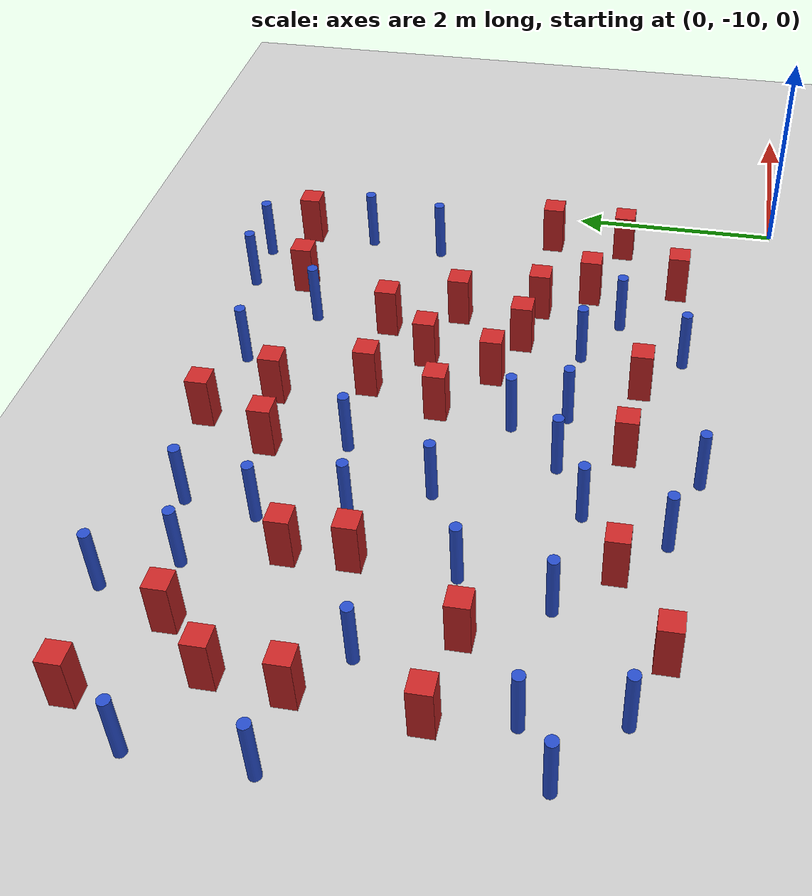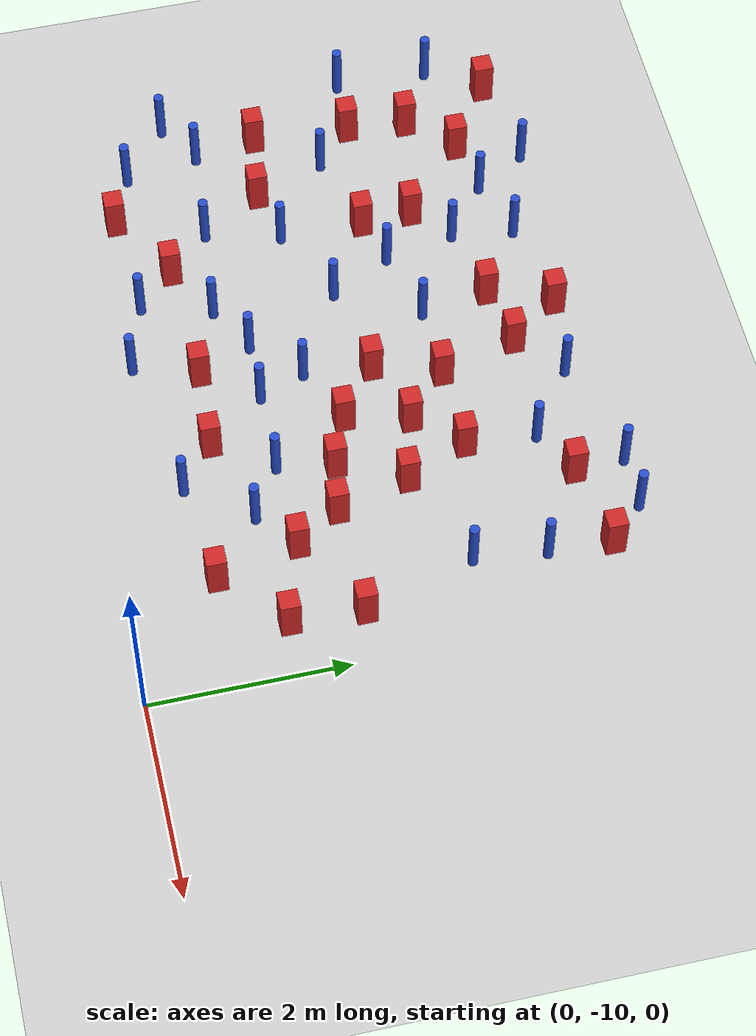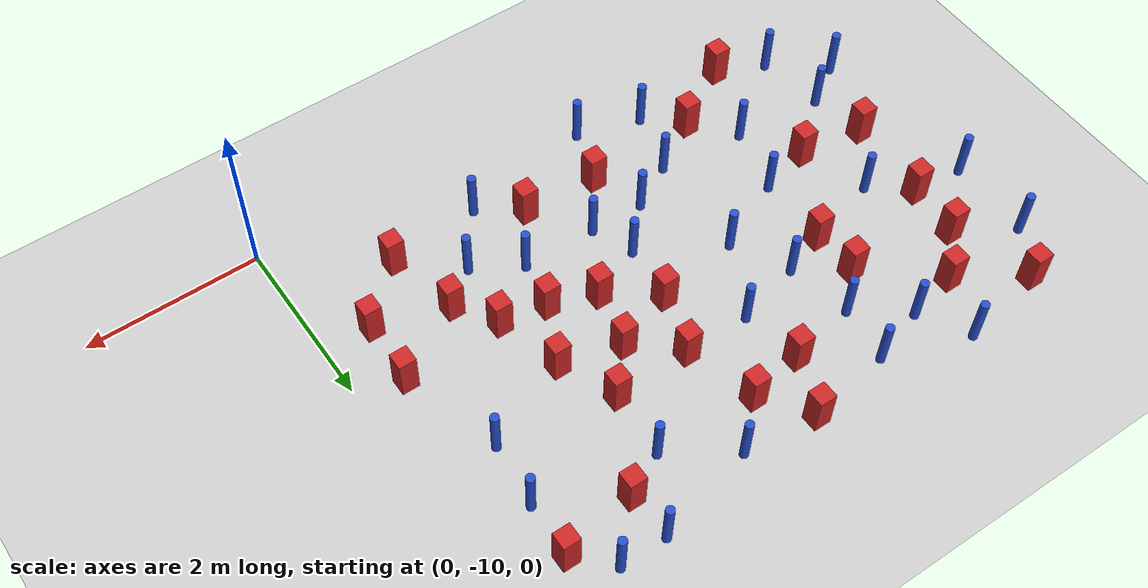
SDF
<sdf version="1.6">
 <world name="default">
  <model name="ground_plane">
   <static>1</static>
   <link name="link">
    <collision name="collision">
     <geometry><plane><normal>0 0 1</normal><size>100 100</size></plane></geometry>
     <surface><friction><ode><mu>100</mu><mu2>50</mu2></ode></friction></surface>
    </collision>
    <visual name="visual">
     <cast_shadows>0</cast_shadows>
     <geometry><plane><normal>0 0 1</normal><size>100 100</size></plane></geometry>
     <material>
      <ambient>1.0 1.0 1.0 1.0</ambient>
      <diffuse>0.8 0.8 0.8 1.0</diffuse>
      <specular>0.01 0.01 0.01 1.000000</specular>
     </material>
    </visual>
   </link>
  </model>
  <model name="pole_obstacle0">
   <static>true</static>
   <pose>-0.847177458595 -6.63386567465 7.38925637345e-09 -8.471706928e-08 1.24976765086e-08 -1.74513093015e-07</pose>
   <link name="link">
    <pose>0 0 0.3 0 -0 0</pose>
    <inertial>
     <mass>1</mass>
     <inertia><ixx>0.145833</ixx><ixy>0</ixy><ixz>0</ixz><iyy>0.145833</iyy><iyz>0</iyz><izz>0.125</izz></inertia>
    </inertial>
    <collision name="collision">
     <geometry><cylinder><radius>0.05</radius><length>.6</length></cylinder></geometry>
    </collision>
    <visual name="visual">
     <geometry><cylinder><radius>0.05</radius><length>.6</length></cylinder></geometry>
     <material>
      <script><name>Gazebo/Blue</name><uri>file://media/materials/scripts/gazebo.material</uri></script>
     </material>
    </visual>
   </link>
  </model>
  <model name="square_post_obstacle3">
   <static>true</static>
   <pose>-5.67274698728 -7.77645275839 1.91545236811e-07 -7.35059704564e-06 1.12565212e-07 2.39332434364e-05</pose>
   <link name="link">
    <pose>0 0 0.25 0 -0 0</pose>
    <inertial>
     <mass>100</mass>
     <inertia>
      <ixx>0.166667</ixx>
      <ixy>0</ixy>
      <ixz>0</ixz>
      <iyy>0.166667</iyy>
      <iyz>0</iyz>
      <izz>0.166667</izz>
     </inertia>
    </inertial>
    <collision name="collision"><geometry><box><size>.2 .2 .5</size></box></geometry></collision>
    <visual name="visual">
     <geometry><box><size>.2 .2 .5</size></box></geometry>
     <material>
      <script><name>Gazebo/Red</name><uri>file://media/materials/scripts/gazebo.material</uri></script>
     </material>
    </visual>
   </link>
  </model>
  <model name="pole_obstacle3">
   <static>true</static>
   <pose>-4.64776272858 -5.25845965169 7.38925637345e-09 -8.47170692796e-08 1.24976764786e-08 -1.74513093032e-07</pose>
   <link name="link">
    <pose>0 0 0.3 0 -0 0</pose>
    <inertial>
     <mass>1</mass>
     <inertia><ixx>0.145833</ixx><ixy>0</ixy><ixz>0</ixz><iyy>0.145833</iyy><iyz>0</iyz><izz>0.125</izz></inertia>
    </inertial>
    <collision name="collision">
     <geometry><cylinder><radius>0.05</radius><length>.6</length></cylinder></geometry>
    </collision>
    <visual name="visual">
     <geometry><cylinder><radius>0.05</radius><length>.6</length></cylinder></geometry>
     <material>
      <script><name>Gazebo/Blue</name><uri>file://media/materials/scripts/gazebo.material</uri></script>
     </material>
    </visual>
   </link>
  </model>
  <model name="pole_obstacle5">
   <static>true</static>
   <pose>-4.25915340663 -7.26194745573 7.38925637345e-09 -8.47170692796e-08 1.24976764786e-08 -1.74513093032e-07</pose>
   <link name="link">
    <pose>0 0 0.3 0 -0 0</pose>
    <inertial>
     <mass>1</mass>
     <inertia><ixx>0.145833</ixx><ixy>0</ixy><ixz>0</ixz><iyy>0.145833</iyy><iyz>0</iyz><izz>0.125</izz></inertia>
    </inertial>
    <collision name="collision">
     <geometry><cylinder><radius>0.05</radius><length>.6</length></cylinder></geometry>
    </collision>
    <visual name="visual">
     <geometry><cylinder><radius>0.05</radius><length>.6</length></cylinder></geometry>
     <material>
      <script><name>Gazebo/Blue</name><uri>file://media/materials/scripts/gazebo.material</uri></script>
     </material>
    </visual>
   </link>
  </model>
  <model name="square_post_obstacle8">
   <static>true</static>
   <pose>-5.86757780584 -5.58678446835 1.91545236811e-07 -7.35059704564e-06 1.12565212e-07 2.39332434364e-05</pose>
   <link name="link">
    <pose>0 0 0.25 0 -0 0</pose>
    <inertial>
     <mass>100</mass>
     <inertia>
      <ixx>0.166667</ixx>
      <ixy>0</ixy>
      <ixz>0</ixz>
      <iyy>0.166667</iyy>
      <iyz>0</iyz>
      <izz>0.166667</izz>
     </inertia>
    </inertial>
    <collision name="collision"><geometry><box><size>.2 .2 .5</size></box></geometry></collision>
    <visual name="visual">
     <geometry><box><size>.2 .2 .5</size></box></geometry>
     <material>
      <script><name>Gazebo/Red</name><uri>file://media/materials/scripts/gazebo.material</uri></script>
     </material>
    </visual>
   </link>
  </model>
  <model name="square_post_obstacle15">
   <static>true</static>
   <pose>-3.65186319388 -5.09281954235 1.91545236811e-07 -7.35059704564e-06 1.12565212e-07 2.39332434364e-05</pose>
   <link name="link">
    <pose>0 0 0.25 0 -0 0</pose>
    <inertial>
     <mass>100</mass>
     <inertia>
      <ixx>0.166667</ixx>
      <ixy>0</ixy>
      <ixz>0</ixz>
      <iyy>0.166667</iyy>
      <iyz>0</iyz>
      <izz>0.166667</izz>
     </inertia>
    </inertial>
    <collision name="collision"><geometry><box><size>.2 .2 .5</size></box></geometry></collision>
    <visual name="visual">
     <geometry><box><size>.2 .2 .5</size></box></geometry>
     <material>
      <script><name>Gazebo/Red</name><uri>file://media/materials/scripts/gazebo.material</uri></script>
     </material>
    </visual>
   </link>
  </model>
  <model name="square_post_obstacle20">
   <static>true</static>
   <pose>-3.03349951172 -6.41623944425 1.91545236811e-07 -7.35059704564e-06 1.12565212e-07 2.39332434364e-05</pose>
   <link name="link">
    <pose>0 0 0.25 0 -0 0</pose>
    <inertial>
     <mass>100</mass>
     <inertia>
      <ixx>0.166667</ixx>
      <ixy>0</ixy>
      <ixz>0</ixz>
      <iyy>0.166667</iyy>
      <iyz>0</iyz>
      <izz>0.166667</izz>
     </inertia>
    </inertial>
    <collision name="collision"><geometry><box><size>.2 .2 .5</size></box></geometry></collision>
    <visual name="visual">
     <geometry><box><size>.2 .2 .5</size></box></geometry>
     <material>
      <script><name>Gazebo/Red</name><uri>file://media/materials/scripts/gazebo.material</uri></script>
     </material>
    </visual>
   </link>
  </model>
  <model name="square_post_obstacle21">
   <static>true</static>
   <pose>-0.538980642781 -8.501063538 1.91545236811e-07 -7.35059704564e-06 1.12565212e-07 2.39332434364e-05</pose>
   <link name="link">
    <pose>0 0 0.25 0 -0 0</pose>
    <inertial>
     <mass>100</mass>
     <inertia>
      <ixx>0.166667</ixx>
      <ixy>0</ixy>
      <ixz>0</ixz>
      <iyy>0.166667</iyy>
      <iyz>0</iyz>
      <izz>0.166667</izz>
     </inertia>
    </inertial>
    <collision name="collision"><geometry><box><size>.2 .2 .5</size></box></geometry></collision>
    <visual name="visual">
     <geometry><box><size>.2 .2 .5</size></box></geometry>
     <material>
      <script><name>Gazebo/Red</name><uri>file://media/materials/scripts/gazebo.material</uri></script>
     </material>
    </visual>
   </link>
  </model>
  <model name="square_post_obstacle28">
   <static>true</static>
   <pose>-0.736365129288 -5.26220822296 1.91545236811e-07 -7.35059704564e-06 1.12565212e-07 2.39332434364e-05</pose>
   <link name="link">
    <pose>0 0 0.25 0 -0 0</pose>
    <inertial>
     <mass>100</mass>
     <inertia>
      <ixx>0.166667</ixx>
      <ixy>0</ixy>
      <ixz>0</ixz>
      <iyy>0.166667</iyy>
      <iyz>0</iyz>
      <izz>0.166667</izz>
     </inertia>
    </inertial>
    <collision name="collision"><geometry><box><size>.2 .2 .5</size></box></geometry></collision>
    <visual name="visual">
     <geometry><box><size>.2 .2 .5</size></box></geometry>
     <material>
      <script><name>Gazebo/Red</name><uri>file://media/materials/scripts/gazebo.material</uri></script>
     </material>
    </visual>
   </link>
  </model>
  <model name="square_post_obstacle30">
   <static>true</static>
   <pose>-3.26258293023 -5.61690610967 1.91545236811e-07 -7.35059704564e-06 1.12565212e-07 2.39332434364e-05</pose>
   <link name="link">
    <pose>0 0 0.25 0 -0 0</pose>
    <inertial>
     <mass>100</mass>
     <inertia>
      <ixx>0.166667</ixx>
      <ixy>0</ixy>
      <ixz>0</ixz>
      <iyy>0.166667</iyy>
      <iyz>0</iyz>
      <izz>0.166667</izz>
     </inertia>
    </inertial>
    <collision name="collision"><geometry><box><size>.2 .2 .5</size></box></geometry></collision>
    <visual name="visual">
     <geometry><box><size>.2 .2 .5</size></box></geometry>
     <material>
      <script><name>Gazebo/Red</name><uri>file://media/materials/scripts/gazebo.material</uri></script>
     </material>
    </visual>
   </link>
  </model>
  <model name="pole_obstacle25">
   <static>true</static>
   <pose>-6.9955676343 -6.62596626591 7.38925637345e-09 -8.47170692796e-08 1.24976764786e-08 -1.74513093032e-07</pose>
   <link name="link">
    <pose>0 0 0.3 0 -0 0</pose>
    <inertial>
     <mass>1</mass>
     <inertia><ixx>0.145833</ixx><ixy>0</ixy><ixz>0</ixz><iyy>0.145833</iyy><iyz>0</iyz><izz>0.125</izz></inertia>
    </inertial>
    <collision name="collision">
     <geometry><cylinder><radius>0.05</radius><length>.6</length></cylinder></geometry>
    </collision>
    <visual name="visual">
     <geometry><cylinder><radius>0.05</radius><length>.6</length></cylinder></geometry>
     <material>
      <script><name>Gazebo/Blue</name><uri>file://media/materials/scripts/gazebo.material</uri></script>
     </material>
    </visual>
   </link>
  </model>
  <model name="pole_obstacle36">
   <static>true</static>
   <pose>-2.8112158535 -5.18992927133 7.38925637345e-09 -8.47170692798e-08 1.24976765033e-08 -1.74513093019e-07</pose>
   <link name="link">
    <pose>0 0 0.3 0 -0 0</pose>
    <inertial>
     <mass>1</mass>
     <inertia><ixx>0.145833</ixx><ixy>0</ixy><ixz>0</ixz><iyy>0.145833</iyy><iyz>0</iyz><izz>0.125</izz></inertia>
    </inertial>
    <collision name="collision">
     <geometry><cylinder><radius>0.05</radius><length>.6</length></cylinder></geometry>
    </collision>
    <visual name="visual">
     <geometry><cylinder><radius>0.05</radius><length>.6</length></cylinder></geometry>
     <material>
      <script><name>Gazebo/Blue</name><uri>file://media/materials/scripts/gazebo.material</uri></script>
     </material>
    </visual>
   </link>
  </model>
  <model name="pole_obstacle40">
   <static>true</static>
   <pose>-4.58627101177 -6.62813667197 7.38925637345e-09 -8.47170692796e-08 1.24976764786e-08 -1.74513093032e-07</pose>
   <link name="link">
    <pose>0 0 0.3 0 -0 0</pose>
    <inertial>
     <mass>1</mass>
     <inertia><ixx>0.145833</ixx><ixy>0</ixy><ixz>0</ixz><iyy>0.145833</iyy><iyz>0</iyz><izz>0.125</izz></inertia>
    </inertial>
    <collision name="collision">
     <geometry><cylinder><radius>0.05</radius><length>.6</length></cylinder></geometry>
    </collision>
    <visual name="visual">
     <geometry><cylinder><radius>0.05</radius><length>.6</length></cylinder></geometry>
     <material>
      <script><name>Gazebo/Blue</name><uri>file://media/materials/scripts/gazebo.material</uri></script>
     </material>
    </visual>
   </link>
  </model>
  <model name="pole_obstacle41">
   <static>true</static>
   <pose>-4.51130680225 -9.22938415425 7.38925637345e-09 -8.471706928e-08 1.24976765081e-08 -1.74513093015e-07</pose>
   <link name="link">
    <pose>0 0 0.3 0 -0 0</pose>
    <inertial>
     <mass>1</mass>
     <inertia><ixx>0.145833</ixx><ixy>0</ixy><ixz>0</ixz><iyy>0.145833</iyy><iyz>0</iyz><izz>0.125</izz></inertia>
    </inertial>
    <collision name="collision">
     <geometry><cylinder><radius>0.05</radius><length>.6</length></cylinder></geometry>
    </collision>
    <visual name="visual">
     <geometry><cylinder><radius>0.05</radius><length>.6</length></cylinder></geometry>
     <material>
      <script><name>Gazebo/Blue</name><uri>file://media/materials/scripts/gazebo.material</uri></script>
     </material>
    </visual>
   </link>
  </model>
  <model name="square_post_obstacle41">
   <static>true</static>
   <pose>-1.86152418229 -7.03844438511 1.91545236811e-07 -7.35059704564e-06 1.12565212e-07 2.39332434364e-05</pose>
   <link name="link">
    <pose>0 0 0.25 0 -0 0</pose>
    <inertial>
     <mass>100</mass>
     <inertia>
      <ixx>0.166667</ixx>
      <ixy>0</ixy>
      <ixz>0</ixz>
      <iyy>0.166667</iyy>
      <iyz>0</iyz>
      <izz>0.166667</izz>
     </inertia>
    </inertial>
    <collision name="collision"><geometry><box><size>.2 .2 .5</size></box></geometry></collision>
    <visual name="visual">
     <geometry><box><size>.2 .2 .5</size></box></geometry>
     <material>
      <script><name>Gazebo/Red</name><uri>file://media/materials/scripts/gazebo.material</uri></script>
     </material>
    </visual>
   </link>
  </model>
  <model name="square_post_obstacle51">
   <static>true</static>
   <pose>-2.14371637657 -6.39831612667 1.91545236811e-07 -7.35059704564e-06 1.12565212e-07 2.39332434364e-05</pose>
   <link name="link">
    <pose>0 0 0.25 0 -0 0</pose>
    <inertial>
     <mass>100</mass>
     <inertia>
      <ixx>0.166667</ixx>
      <ixy>0</ixy>
      <ixz>0</ixz>
      <iyy>0.166667</iyy>
      <iyz>0</iyz>
      <izz>0.166667</izz>
     </inertia>
    </inertial>
    <collision name="collision"><geometry><box><size>.2 .2 .5</size></box></geometry></collision>
    <visual name="visual">
     <geometry><box><size>.2 .2 .5</size></box></geometry>
     <material>
      <script><name>Gazebo/Red</name><uri>file://media/materials/scripts/gazebo.material</uri></script>
     </material>
    </visual>
   </link>
  </model>
  <model name="pole_obstacle56">
   <static>true</static>
   <pose>-5.62162409695 -4.92786356861 7.38925637345e-09 -8.47170692796e-08 1.24976764786e-08 -1.74513093032e-07</pose>
   <link name="link">
    <pose>0 0 0.3 0 -0 0</pose>
    <inertial>
     <mass>1</mass>
     <inertia><ixx>0.145833</ixx><ixy>0</ixy><ixz>0</ixz><iyy>0.145833</iyy><iyz>0</iyz><izz>0.125</izz></inertia>
    </inertial>
    <collision name="collision">
     <geometry><cylinder><radius>0.05</radius><length>.6</length></cylinder></geometry>
    </collision>
    <visual name="visual">
     <geometry><cylinder><radius>0.05</radius><length>.6</length></cylinder></geometry>
     <material>
      <script><name>Gazebo/Blue</name><uri>file://media/materials/scripts/gazebo.material</uri></script>
     </material>
    </visual>
   </link>
  </model>
  <model name="square_post_obstacle68">
   <static>true</static>
   <pose>-0.502850593345 -7.76920755605 1.91545236811e-07 -7.35059704564e-06 1.12565212e-07 2.39332434364e-05</pose>
   <link name="link">
    <pose>0 0 0.25 0 -0 0</pose>
    <inertial>
     <mass>100</mass>
     <inertia>
      <ixx>0.166667</ixx>
      <ixy>0</ixy>
      <ixz>0</ixz>
      <iyy>0.166667</iyy>
      <iyz>0</iyz>
      <izz>0.166667</izz>
     </inertia>
    </inertial>
    <collision name="collision"><geometry><box><size>.2 .2 .5</size></box></geometry></collision>
    <visual name="visual">
     <geometry><box><size>.2 .2 .5</size></box></geometry>
     <material>
      <script><name>Gazebo/Red</name><uri>file://media/materials/scripts/gazebo.material</uri></script>
     </material>
    </visual>
   </link>
  </model>
  <model name="pole_obstacle67">
   <static>true</static>
   <pose>-5.30021804134 -8.40699624284 7.38925637345e-09 -8.471706928e-08 1.24976765081e-08 -1.74513093015e-07</pose>
   <link name="link">
    <pose>0 0 0.3 0 -0 0</pose>
    <inertial>
     <mass>1</mass>
     <inertia><ixx>0.145833</ixx><ixy>0</ixy><ixz>0</ixz><iyy>0.145833</iyy><iyz>0</iyz><izz>0.125</izz></inertia>
    </inertial>
    <collision name="collision">
     <geometry><cylinder><radius>0.05</radius><length>.6</length></cylinder></geometry>
    </collision>
    <visual name="visual">
     <geometry><cylinder><radius>0.05</radius><length>.6</length></cylinder></geometry>
     <material>
      <script><name>Gazebo/Blue</name><uri>file://media/materials/scripts/gazebo.material</uri></script>
     </material>
    </visual>
   </link>
  </model>
  <model name="square_post_obstacle74">
   <static>true</static>
   <pose>-1.15944130475 -9.08603971386 1.91545236811e-07 -7.35059704564e-06 1.12565212e-07 2.39332434364e-05</pose>
   <link name="link">
    <pose>0 0 0.25 0 -0 0</pose>
    <inertial>
     <mass>100</mass>
     <inertia>
      <ixx>0.166667</ixx>
      <ixy>0</ixy>
      <ixz>0</ixz>
      <iyy>0.166667</iyy>
      <iyz>0</iyz>
      <izz>0.166667</izz>
     </inertia>
    </inertial>
    <collision name="collision"><geometry><box><size>.2 .2 .5</size></box></geometry></collision>
    <visual name="visual">
     <geometry><box><size>.2 .2 .5</size></box></geometry>
     <material>
      <script><name>Gazebo/Red</name><uri>file://media/materials/scripts/gazebo.material</uri></script>
     </material>
    </visual>
   </link>
  </model>
  <model name="pole_obstacle69">
   <static>true</static>
   <pose>-2.24147362272 -9.20842374757 7.38925637345e-09 -8.47170692793e-08 1.24976764408e-08 -1.74513093041e-07</pose>
   <link name="link">
    <pose>0 0 0.3 0 -0 0</pose>
    <inertial>
     <mass>1</mass>
     <inertia><ixx>0.145833</ixx><ixy>0</ixy><ixz>0</ixz><iyy>0.145833</iyy><iyz>0</iyz><izz>0.125</izz></inertia>
    </inertial>
    <collision name="collision">
     <geometry><cylinder><radius>0.05</radius><length>.6</length></cylinder></geometry>
    </collision>
    <visual name="visual">
     <geometry><cylinder><radius>0.05</radius><length>.6</length></cylinder></geometry>
     <material>
      <script><name>Gazebo/Blue</name><uri>file://media/materials/scripts/gazebo.material</uri></script>
     </material>
    </visual>
   </link>
  </model>
  <model name="square_post_obstacle76">
   <static>true</static>
   <pose>-2.69106464355 -8.85214896783 1.91545236811e-07 -7.35059704564e-06 1.12565212e-07 2.39332434364e-05</pose>
   <link name="link">
    <pose>0 0 0.25 0 -0 0</pose>
    <inertial>
     <mass>100</mass>
     <inertia>
      <ixx>0.166667</ixx>
      <ixy>0</ixy>
      <ixz>0</ixz>
      <iyy>0.166667</iyy>
      <iyz>0</iyz>
      <izz>0.166667</izz>
     </inertia>
    </inertial>
    <collision name="collision"><geometry><box><size>.2 .2 .5</size></box></geometry></collision>
    <visual name="visual">
     <geometry><box><size>.2 .2 .5</size></box></geometry>
     <material>
      <script><name>Gazebo/Red</name><uri>file://media/materials/scripts/gazebo.material</uri></script>
     </material>
    </visual>
   </link>
  </model>
  <model name="pole_obstacle73">
   <static>true</static>
   <pose>-5.96661779144 -7.03344693735 7.38925637345e-09 -8.47170692796e-08 1.24976764786e-08 -1.74513093032e-07</pose>
   <link name="link">
    <pose>0 0 0.3 0 -0 0</pose>
    <inertial>
     <mass>1</mass>
     <inertia><ixx>0.145833</ixx><ixy>0</ixy><ixz>0</ixz><iyy>0.145833</iyy><iyz>0</iyz><izz>0.125</izz></inertia>
    </inertial>
    <collision name="collision">
     <geometry><cylinder><radius>0.05</radius><length>.6</length></cylinder></geometry>
    </collision>
    <visual name="visual">
     <geometry><cylinder><radius>0.05</radius><length>.6</length></cylinder></geometry>
     <material>
      <script><name>Gazebo/Blue</name><uri>file://media/materials/scripts/gazebo.material</uri></script>
     </material>
    </visual>
   </link>
  </model>
  <model name="pole_obstacle75">
   <static>true</static>
   <pose>-1.6432676266 -4.89795423336 7.38925637345e-09 -8.47170692799e-08 1.24976765033e-08 -1.74513093018e-07</pose>
   <link name="link">
    <pose>0 0 0.3 0 -0 0</pose>
    <inertial>
     <mass>1</mass>
     <inertia><ixx>0.145833</ixx><ixy>0</ixy><ixz>0</ixz><iyy>0.145833</iyy><iyz>0</iyz><izz>0.125</izz></inertia>
    </inertial>
    <collision name="collision">
     <geometry><cylinder><radius>0.05</radius><length>.6</length></cylinder></geometry>
    </collision>
    <visual name="visual">
     <geometry><cylinder><radius>0.05</radius><length>.6</length></cylinder></geometry>
     <material>
      <script><name>Gazebo/Blue</name><uri>file://media/materials/scripts/gazebo.material</uri></script>
     </material>
    </visual>
   </link>
  </model>
  <model name="pole_obstacle81">
   <static>true</static>
   <pose>-6.20832779429 -9.07261118678 7.38925637345e-09 -8.471706928e-08 1.24976765081e-08 -1.74513093015e-07</pose>
   <link name="link">
    <pose>0 0 0.3 0 -0 0</pose>
    <inertial>
     <mass>1</mass>
     <inertia><ixx>0.145833</ixx><ixy>0</ixy><ixz>0</ixz><iyy>0.145833</iyy><iyz>0</iyz><izz>0.125</izz></inertia>
    </inertial>
    <collision name="collision">
     <geometry><cylinder><radius>0.05</radius><length>.6</length></cylinder></geometry>
    </collision>
    <visual name="visual">
     <geometry><cylinder><radius>0.05</radius><length>.6</length></cylinder></geometry>
     <material>
      <script><name>Gazebo/Blue</name><uri>file://media/materials/scripts/gazebo.material</uri></script>
     </material>
    </visual>
   </link>
  </model>
  <model name="pole_obstacle92">
   <static>true</static>
   <pose>-1.7720501906 -8.58290614097 7.38925637345e-09 -8.47170692798e-08 1.24976764881e-08 -1.74513093027e-07</pose>
   <link name="link">
    <pose>0 0 0.3 0 -0 0</pose>
    <inertial>
     <mass>1</mass>
     <inertia><ixx>0.145833</ixx><ixy>0</ixy><ixz>0</ixz><iyy>0.145833</iyy><iyz>0</iyz><izz>0.125</izz></inertia>
    </inertial>
    <collision name="collision">
     <geometry><cylinder><radius>0.05</radius><length>.6</length></cylinder></geometry>
    </collision>
    <visual name="visual">
     <geometry><cylinder><radius>0.05</radius><length>.6</length></cylinder></geometry>
     <material>
      <script><name>Gazebo/Blue</name><uri>file://media/materials/scripts/gazebo.material</uri></script>
     </material>
    </visual>
   </link>
  </model>
  <model name="pole_obstacle95">
   <static>true</static>
   <pose>-3.82068310301 -6.42851771252 7.38925637345e-09 -8.47170692794e-08 1.24976764468e-08 -1.7451309304e-07</pose>
   <link name="link">
    <pose>0 0 0.3 0 -0 0</pose>
    <inertial>
     <mass>1</mass>
     <inertia><ixx>0.145833</ixx><ixy>0</ixy><ixz>0</ixz><iyy>0.145833</iyy><iyz>0</iyz><izz>0.125</izz></inertia>
    </inertial>
    <collision name="collision">
     <geometry><cylinder><radius>0.05</radius><length>.6</length></cylinder></geometry>
    </collision>
    <visual name="visual">
     <geometry><cylinder><radius>0.05</radius><length>.6</length></cylinder></geometry>
     <material>
      <script><name>Gazebo/Blue</name><uri>file://media/materials/scripts/gazebo.material</uri></script>
     </material>
    </visual>
   </link>
  </model>
  <model name="pole_obstacle98">
   <static>true</static>
   <pose>-3.34426517097 -7.77642432519 7.38925637345e-09 -8.47170692798e-08 1.24976765033e-08 -1.74513093019e-07</pose>
   <link name="link">
    <pose>0 0 0.3 0 -0 0</pose>
    <inertial>
     <mass>1</mass>
     <inertia><ixx>0.145833</ixx><ixy>0</ixy><ixz>0</ixz><iyy>0.145833</iyy><iyz>0</iyz><izz>0.125</izz></inertia>
    </inertial>
    <collision name="collision">
     <geometry><cylinder><radius>0.05</radius><length>.6</length></cylinder></geometry>
    </collision>
    <visual name="visual">
     <geometry><cylinder><radius>0.05</radius><length>.6</length></cylinder></geometry>
     <material>
      <script><name>Gazebo/Blue</name><uri>file://media/materials/scripts/gazebo.material</uri></script>
     </material>
    </visual>
   </link>
  </model>
  <model name="square_post_obstacle91">
   <static>true</static>
   <pose>-3.25050763781 -7.09364327558 1.91545236811e-07 -7.35059704564e-06 1.12565212e-07 2.39332434364e-05</pose>
   <link name="link">
    <pose>0 0 0.25 0 -0 0</pose>
    <inertial>
     <mass>100</mass>
     <inertia>
      <ixx>0.166667</ixx>
      <ixy>0</ixy>
      <ixz>0</ixz>
      <iyy>0.166667</iyy>
      <iyz>0</iyz>
      <izz>0.166667</izz>
     </inertia>
    </inertial>
    <collision name="collision"><geometry><box><size>.2 .2 .5</size></box></geometry></collision>
    <visual name="visual">
     <geometry><box><size>.2 .2 .5</size></box></geometry>
     <material>
      <script><name>Gazebo/Red</name><uri>file://media/materials/scripts/gazebo.material</uri></script>
     </material>
    </visual>
   </link>
  </model>
  <model name="pole_obstacle106">
   <static>true</static>
   <pose>-4.30368951576 -8.5150296891 7.38925637345e-09 -8.471706928e-08 1.24976765081e-08 -1.74513093015e-07</pose>
   <link name="link">
    <pose>0 0 0.3 0 -0 0</pose>
    <inertial>
     <mass>1</mass>
     <inertia><ixx>0.145833</ixx><ixy>0</ixy><ixz>0</ixz><iyy>0.145833</iyy><iyz>0</iyz><izz>0.125</izz></inertia>
    </inertial>
    <collision name="collision">
     <geometry><cylinder><radius>0.05</radius><length>.6</length></cylinder></geometry>
    </collision>
    <visual name="visual">
     <geometry><cylinder><radius>0.05</radius><length>.6</length></cylinder></geometry>
     <material>
      <script><name>Gazebo/Blue</name><uri>file://media/materials/scripts/gazebo.material</uri></script>
     </material>
    </visual>
   </link>
  </model>
  <model name="pole_obstacle108">
   <static>true</static>
   <pose>-3.78404208753 -9.44545621964 7.38925637345e-09 -8.47170692799e-08 1.24976765012e-08 -1.74513093021e-07</pose>
   <link name="link">
    <pose>0 0 0.3 0 -0 0</pose>
    <inertial>
     <mass>1</mass>
     <inertia><ixx>0.145833</ixx><ixy>0</ixy><ixz>0</ixz><iyy>0.145833</iyy><iyz>0</iyz><izz>0.125</izz></inertia>
    </inertial>
    <collision name="collision">
     <geometry><cylinder><radius>0.05</radius><length>.6</length></cylinder></geometry>
    </collision>
    <visual name="visual">
     <geometry><cylinder><radius>0.05</radius><length>.6</length></cylinder></geometry>
     <material>
      <script><name>Gazebo/Blue</name><uri>file://media/materials/scripts/gazebo.material</uri></script>
     </material>
    </visual>
   </link>
  </model>
  <model name="square_post_obstacle96">
   <static>true</static>
   <pose>-6.300171956 -6.04016864996 1.91545236811e-07 -7.35059704564e-06 1.12565212e-07 2.39332434364e-05</pose>
   <link name="link">
    <pose>0 0 0.25 0 -0 0</pose>
    <inertial>
     <mass>100</mass>
     <inertia>
      <ixx>0.166667</ixx>
      <ixy>0</ixy>
      <ixz>0</ixz>
      <iyy>0.166667</iyy>
      <iyz>0</iyz>
      <izz>0.166667</izz>
     </inertia>
    </inertial>
    <collision name="collision"><geometry><box><size>.2 .2 .5</size></box></geometry></collision>
    <visual name="visual">
     <geometry><box><size>.2 .2 .5</size></box></geometry>
     <material>
      <script><name>Gazebo/Red</name><uri>file://media/materials/scripts/gazebo.material</uri></script>
     </material>
    </visual>
   </link>
  </model>
  <model name="pole_obstacle112">
   <static>true</static>
   <pose>-6.33776666148 -8.31098105719 7.38925637345e-09 -8.471706928e-08 1.24976765081e-08 -1.74513093015e-07</pose>
   <link name="link">
    <pose>0 0 0.3 0 -0 0</pose>
    <inertial>
     <mass>1</mass>
     <inertia><ixx>0.145833</ixx><ixy>0</ixy><ixz>0</ixz><iyy>0.145833</iyy><iyz>0</iyz><izz>0.125</izz></inertia>
    </inertial>
    <collision name="collision">
     <geometry><cylinder><radius>0.05</radius><length>.6</length></cylinder></geometry>
    </collision>
    <visual name="visual">
     <geometry><cylinder><radius>0.05</radius><length>.6</length></cylinder></geometry>
     <material>
      <script><name>Gazebo/Blue</name><uri>file://media/materials/scripts/gazebo.material</uri></script>
     </material>
    </visual>
   </link>
  </model>
  <model name="square_post_obstacle100">
   <static>true</static>
   <pose>-6.35793012763 -6.66206963413 1.91545236811e-07 -7.35059704564e-06 1.12565212e-07 2.39332434364e-05</pose>
   <link name="link">
    <pose>0 0 0.25 0 -0 0</pose>
    <inertial>
     <mass>100</mass>
     <inertia>
      <ixx>0.166667</ixx>
      <ixy>0</ixy>
      <ixz>0</ixz>
      <iyy>0.166667</iyy>
      <iyz>0</iyz>
      <izz>0.166667</izz>
     </inertia>
    </inertial>
    <collision name="collision"><geometry><box><size>.2 .2 .5</size></box></geometry></collision>
    <visual name="visual">
     <geometry><box><size>.2 .2 .5</size></box></geometry>
     <material>
      <script><name>Gazebo/Red</name><uri>file://media/materials/scripts/gazebo.material</uri></script>
     </material>
    </visual>
   </link>
  </model>
  <model name="pole_obstacle115">
   <static>true</static>
   <pose>-2.30115725821 -8.270072489 7.38925637345e-09 -8.47170692793e-08 1.24976764408e-08 -1.74513093041e-07</pose>
   <link name="link">
    <pose>0 0 0.3 0 -0 0</pose>
    <inertial>
     <mass>1</mass>
     <inertia><ixx>0.145833</ixx><ixy>0</ixy><ixz>0</ixz><iyy>0.145833</iyy><iyz>0</iyz><izz>0.125</izz></inertia>
    </inertial>
    <collision name="collision">
     <geometry><cylinder><radius>0.05</radius><length>.6</length></cylinder></geometry>
    </collision>
    <visual name="visual">
     <geometry><cylinder><radius>0.05</radius><length>.6</length></cylinder></geometry>
     <material>
      <script><name>Gazebo/Blue</name><uri>file://media/materials/scripts/gazebo.material</uri></script>
     </material>
    </visual>
   </link>
  </model>
  <model name="square_post_obstacle109">
   <static>true</static>
   <pose>-2.70698013744 -7.49964789773 1.91545236811e-07 -7.35059704564e-06 1.12565212e-07 2.39332434364e-05</pose>
   <link name="link">
    <pose>0 0 0.25 0 -0 0</pose>
    <inertial>
     <mass>100</mass>
     <inertia>
      <ixx>0.166667</ixx>
      <ixy>0</ixy>
      <ixz>0</ixz>
      <iyy>0.166667</iyy>
      <iyz>0</iyz>
      <izz>0.166667</izz>
     </inertia>
    </inertial>
    <collision name="collision"><geometry><box><size>.2 .2 .5</size></box></geometry></collision>
    <visual name="visual">
     <geometry><box><size>.2 .2 .5</size></box></geometry>
     <material>
      <script><name>Gazebo/Red</name><uri>file://media/materials/scripts/gazebo.material</uri></script>
     </material>
    </visual>
   </link>
  </model>
  <model name="pole_obstacle120">
   <static>true</static>
   <pose>-4.73488404421 -5.89810954631 7.38925637345e-09 -8.47170692796e-08 1.24976764786e-08 -1.74513093032e-07</pose>
   <link name="link">
    <pose>0 0 0.3 0 -0 0</pose>
    <inertial>
     <mass>1</mass>
     <inertia><ixx>0.145833</ixx><ixy>0</ixy><ixz>0</ixz><iyy>0.145833</iyy><iyz>0</iyz><izz>0.125</izz></inertia>
    </inertial>
    <collision name="collision">
     <geometry><cylinder><radius>0.05</radius><length>.6</length></cylinder></geometry>
    </collision>
    <visual name="visual">
     <geometry><cylinder><radius>0.05</radius><length>.6</length></cylinder></geometry>
     <material>
      <script><name>Gazebo/Blue</name><uri>file://media/materials/scripts/gazebo.material</uri></script>
     </material>
    </visual>
   </link>
  </model>
  <model name="square_post_obstacle113">
   <static>true</static>
   <pose>-4.87257526875 -8.84589037719 1.91545236811e-07 -7.35059704564e-06 1.12565212e-07 2.39332434364e-05</pose>
   <link name="link">
    <pose>0 0 0.25 0 -0 0</pose>
    <inertial>
     <mass>100</mass>
     <inertia>
      <ixx>0.166667</ixx>
      <ixy>0</ixy>
      <ixz>0</ixz>
      <iyy>0.166667</iyy>
      <iyz>0</iyz>
      <izz>0.166667</izz>
     </inertia>
    </inertial>
    <collision name="collision"><geometry><box><size>.2 .2 .5</size></box></geometry></collision>
    <visual name="visual">
     <geometry><box><size>.2 .2 .5</size></box></geometry>
     <material>
      <script><name>Gazebo/Red</name><uri>file://media/materials/scripts/gazebo.material</uri></script>
     </material>
    </visual>
   </link>
  </model>
  <model name="square_post_obstacle118">
   <static>true</static>
   <pose>-1.60913472797 -5.42042754421 1.91545236811e-07 -7.35059704564e-06 1.12565212e-07 2.39332434364e-05</pose>
   <link name="link">
    <pose>0 0 0.25 0 -0 0</pose>
    <inertial>
     <mass>100</mass>
     <inertia>
      <ixx>0.166667</ixx>
      <ixy>0</ixy>
      <ixz>0</ixz>
      <iyy>0.166667</iyy>
      <iyz>0</iyz>
      <izz>0.166667</izz>
     </inertia>
    </inertial>
    <collision name="collision"><geometry><box><size>.2 .2 .5</size></box></geometry></collision>
    <visual name="visual">
     <geometry><box><size>.2 .2 .5</size></box></geometry>
     <material>
      <script><name>Gazebo/Red</name><uri>file://media/materials/scripts/gazebo.material</uri></script>
     </material>
    </visual>
   </link>
  </model>
  <model name="square_post_obstacle128">
   <static>true</static>
   <pose>-5.07127322802 -6.78808152207 1.91545236811e-07 -7.35059704564e-06 1.12565212e-07 2.39332434364e-05</pose>
   <link name="link">
    <pose>0 0 0.25 0 -0 0</pose>
    <inertial>
     <mass>100</mass>
     <inertia>
      <ixx>0.166667</ixx>
      <ixy>0</ixy>
      <ixz>0</ixz>
      <iyy>0.166667</iyy>
      <iyz>0</iyz>
      <izz>0.166667</izz>
     </inertia>
    </inertial>
    <collision name="collision"><geometry><box><size>.2 .2 .5</size></box></geometry></collision>
    <visual name="visual">
     <geometry><box><size>.2 .2 .5</size></box></geometry>
     <material>
      <script><name>Gazebo/Red</name><uri>file://media/materials/scripts/gazebo.material</uri></script>
     </material>
    </visual>
   </link>
  </model>
  <model name="square_post_obstacle131">
   <static>true</static>
   <pose>-2.55066082634 -6.85257295972 1.91545236811e-07 -7.35059704564e-06 1.12565212e-07 2.39332434364e-05</pose>
   <link name="link">
    <pose>0 0 0.25 0 -0 0</pose>
    <inertial>
     <mass>100</mass>
     <inertia>
      <ixx>0.166667</ixx>
      <ixy>0</ixy>
      <ixz>0</ixz>
      <iyy>0.166667</iyy>
      <iyz>0</iyz>
      <izz>0.166667</izz>
     </inertia>
    </inertial>
    <collision name="collision"><geometry><box><size>.2 .2 .5</size></box></geometry></collision>
    <visual name="visual">
     <geometry><box><size>.2 .2 .5</size></box></geometry>
     <material>
      <script><name>Gazebo/Red</name><uri>file://media/materials/scripts/gazebo.material</uri></script>
     </material>
    </visual>
   </link>
  </model>
  <model name="square_post_obstacle133">
   <static>true</static>
   <pose>-3.55533503152 -8.79742476784 1.91545236811e-07 -7.35059704564e-06 1.12565212e-07 2.39332434364e-05</pose>
   <link name="link">
    <pose>0 0 0.25 0 -0 0</pose>
    <inertial>
     <mass>100</mass>
     <inertia>
      <ixx>0.166667</ixx>
      <ixy>0</ixy>
      <ixz>0</ixz>
      <iyy>0.166667</iyy>
      <iyz>0</iyz>
      <izz>0.166667</izz>
     </inertia>
    </inertial>
    <collision name="collision"><geometry><box><size>.2 .2 .5</size></box></geometry></collision>
    <visual name="visual">
     <geometry><box><size>.2 .2 .5</size></box></geometry>
     <material>
      <script><name>Gazebo/Red</name><uri>file://media/materials/scripts/gazebo.material</uri></script>
     </material>
    </visual>
   </link>
  </model>
  <model name="pole_obstacle144">
   <static>true</static>
   <pose>-5.10233527567 -7.64062544825 7.38925637345e-09 -8.47170692796e-08 1.24976764786e-08 -1.74513093032e-07</pose>
   <link name="link">
    <pose>0 0 0.3 0 -0 0</pose>
    <inertial>
     <mass>1</mass>
     <inertia><ixx>0.145833</ixx><ixy>0</ixy><ixz>0</ixz><iyy>0.145833</iyy><iyz>0</iyz><izz>0.125</izz></inertia>
    </inertial>
    <collision name="collision">
     <geometry><cylinder><radius>0.05</radius><length>.6</length></cylinder></geometry>
    </collision>
    <visual name="visual">
     <geometry><cylinder><radius>0.05</radius><length>.6</length></cylinder></geometry>
     <material>
      <script><name>Gazebo/Blue</name><uri>file://media/materials/scripts/gazebo.material</uri></script>
     </material>
    </visual>
   </link>
  </model>
  <model name="pole_obstacle146">
   <static>true</static>
   <pose>-6.97531790113 -5.66133177826 7.38925637345e-09 -8.47170692796e-08 1.24976764786e-08 -1.74513093032e-07</pose>
   <link name="link">
    <pose>0 0 0.3 0 -0 0</pose>
    <inertial>
     <mass>1</mass>
     <inertia><ixx>0.145833</ixx><ixy>0</ixy><ixz>0</ixz><iyy>0.145833</iyy><iyz>0</iyz><izz>0.125</izz></inertia>
    </inertial>
    <collision name="collision">
     <geometry><cylinder><radius>0.05</radius><length>.6</length></cylinder></geometry>
    </collision>
    <visual name="visual">
     <geometry><cylinder><radius>0.05</radius><length>.6</length></cylinder></geometry>
     <material>
      <script><name>Gazebo/Blue</name><uri>file://media/materials/scripts/gazebo.material</uri></script>
     </material>
    </visual>
   </link>
  </model>
  <model name="pole_obstacle149">
   <static>true</static>
   <pose>-0.766573597154 -5.90380516124 7.38925637345e-09 -8.471706928e-08 1.24976765086e-08 -1.74513093015e-07</pose>
   <link name="link">
    <pose>0 0 0.3 0 -0 0</pose>
    <inertial>
     <mass>1</mass>
     <inertia><ixx>0.145833</ixx><ixy>0</ixy><ixz>0</ixz><iyy>0.145833</iyy><iyz>0</iyz><izz>0.125</izz></inertia>
    </inertial>
    <collision name="collision">
     <geometry><cylinder><radius>0.05</radius><length>.6</length></cylinder></geometry>
    </collision>
    <visual name="visual">
     <geometry><cylinder><radius>0.05</radius><length>.6</length></cylinder></geometry>
     <material>
      <script><name>Gazebo/Blue</name><uri>file://media/materials/scripts/gazebo.material</uri></script>
     </material>
    </visual>
   </link>
  </model>
  <model name="square_post_obstacle152">
   <static>true</static>
   <pose>-6.42860251929 -7.6670435816 1.91545236811e-07 -7.35059704564e-06 1.12565212e-07 2.39332434364e-05</pose>
   <link name="link">
    <pose>0 0 0.25 0 -0 0</pose>
    <inertial>
     <mass>100</mass>
     <inertia>
      <ixx>0.166667</ixx>
      <ixy>0</ixy>
      <ixz>0</ixz>
      <iyy>0.166667</iyy>
      <iyz>0</iyz>
      <izz>0.166667</izz>
     </inertia>
    </inertial>
    <collision name="collision"><geometry><box><size>.2 .2 .5</size></box></geometry></collision>
    <visual name="visual">
     <geometry><box><size>.2 .2 .5</size></box></geometry>
     <material>
      <script><name>Gazebo/Red</name><uri>file://media/materials/scripts/gazebo.material</uri></script>
     </material>
    </visual>
   </link>
  </model>
  <model name="square_post_obstacle160">
   <static>true</static>
   <pose>-5.09803130684 -6.25982004844 1.91545236811e-07 -7.35059704564e-06 1.12565212e-07 2.39332434364e-05</pose>
   <link name="link">
    <pose>0 0 0.25 0 -0 0</pose>
    <inertial>
     <mass>100</mass>
     <inertia>
      <ixx>0.166667</ixx>
      <ixy>0</ixy>
      <ixz>0</ixz>
      <iyy>0.166667</iyy>
      <iyz>0</iyz>
      <izz>0.166667</izz>
     </inertia>
    </inertial>
    <collision name="collision"><geometry><box><size>.2 .2 .5</size></box></geometry></collision>
    <visual name="visual">
     <geometry><box><size>.2 .2 .5</size></box></geometry>
     <material>
      <script><name>Gazebo/Red</name><uri>file://media/materials/scripts/gazebo.material</uri></script>
     </material>
    </visual>
   </link>
  </model>
  <model name="square_post_obstacle165">
   <static>true</static>
   <pose>-1.35778598532 -8.24769114661 1.91545236811e-07 -7.35059704564e-06 1.12565212e-07 2.39332434364e-05</pose>
   <link name="link">
    <pose>0 0 0.25 0 -0 0</pose>
    <inertial>
     <mass>100</mass>
     <inertia>
      <ixx>0.166667</ixx>
      <ixy>0</ixy>
      <ixz>0</ixz>
      <iyy>0.166667</iyy>
      <iyz>0</iyz>
      <izz>0.166667</izz>
     </inertia>
    </inertial>
    <collision name="collision"><geometry><box><size>.2 .2 .5</size></box></geometry></collision>
    <visual name="visual">
     <geometry><box><size>.2 .2 .5</size></box></geometry>
     <material>
      <script><name>Gazebo/Red</name><uri>file://media/materials/scripts/gazebo.material</uri></script>
     </material>
    </visual>
   </link>
  </model>
  <model name="pole_obstacle177">
   <static>true</static>
   <pose>-2.10193030069 -5.66918520456 7.38925637345e-09 -8.47170692798e-08 1.24976765033e-08 -1.74513093019e-07</pose>
   <link name="link">
    <pose>0 0 0.3 0 -0 0</pose>
    <inertial>
     <mass>1</mass>
     <inertia><ixx>0.145833</ixx><ixy>0</ixy><ixz>0</ixz><iyy>0.145833</iyy><iyz>0</iyz><izz>0.125</izz></inertia>
    </inertial>
    <collision name="collision">
     <geometry><cylinder><radius>0.05</radius><length>.6</length></cylinder></geometry>
    </collision>
    <visual name="visual">
     <geometry><cylinder><radius>0.05</radius><length>.6</length></cylinder></geometry>
     <material>
      <script><name>Gazebo/Blue</name><uri>file://media/materials/scripts/gazebo.material</uri></script>
     </material>
    </visual>
   </link>
  </model>
  <model name="square_post_obstacle167">
   <static>true</static>
   <pose>-3.92175124243 -5.73633389337 1.91545236811e-07 -7.35059704564e-06 1.12565212e-07 2.39332434364e-05</pose>
   <link name="link">
    <pose>0 0 0.25 0 -0 0</pose>
    <inertial>
     <mass>100</mass>
     <inertia>
      <ixx>0.166667</ixx>
      <ixy>0</ixy>
      <ixz>0</ixz>
      <iyy>0.166667</iyy>
      <iyz>0</iyz>
      <izz>0.166667</izz>
     </inertia>
    </inertial>
    <collision name="collision"><geometry><box><size>.2 .2 .5</size></box></geometry></collision>
    <visual name="visual">
     <geometry><box><size>.2 .2 .5</size></box></geometry>
     <material>
      <script><name>Gazebo/Red</name><uri>file://media/materials/scripts/gazebo.material</uri></script>
     </material>
    </visual>
   </link>
  </model>
  <model name="square_post_obstacle168">
   <static>true</static>
   <pose>-1.65785186518 -7.79126191115 1.91545236811e-07 -7.35059704564e-06 1.12565212e-07 2.39332434364e-05</pose>
   <link name="link">
    <pose>0 0 0.25 0 -0 0</pose>
    <inertial>
     <mass>100</mass>
     <inertia>
      <ixx>0.166667</ixx>
      <ixy>0</ixy>
      <ixz>0</ixz>
      <iyy>0.166667</iyy>
      <iyz>0</iyz>
      <izz>0.166667</izz>
     </inertia>
    </inertial>
    <collision name="collision"><geometry><box><size>.2 .2 .5</size></box></geometry></collision>
    <visual name="visual">
     <geometry><box><size>.2 .2 .5</size></box></geometry>
     <material>
      <script><name>Gazebo/Red</name><uri>file://media/materials/scripts/gazebo.material</uri></script>
     </material>
    </visual>
   </link>
  </model>
  <model name="pole_obstacle179">
   <static>true</static>
   <pose>-3.15647402051 -8.25178930952 7.38925637345e-09 -8.47170692793e-08 1.24976764408e-08 -1.74513093041e-07</pose>
   <link name="link">
    <pose>0 0 0.3 0 -0 0</pose>
    <inertial>
     <mass>1</mass>
     <inertia><ixx>0.145833</ixx><ixy>0</ixy><ixz>0</ixz><iyy>0.145833</iyy><iyz>0</iyz><izz>0.125</izz></inertia>
    </inertial>
    <collision name="collision">
     <geometry><cylinder><radius>0.05</radius><length>.6</length></cylinder></geometry>
    </collision>
    <visual name="visual">
     <geometry><cylinder><radius>0.05</radius><length>.6</length></cylinder></geometry>
     <material>
      <script><name>Gazebo/Blue</name><uri>file://media/materials/scripts/gazebo.material</uri></script>
     </material>
    </visual>
   </link>
  </model>
  <model name="square_post_obstacle171">
   <static>true</static>
   <pose>-5.6354516287 -9.29453104509 1.91545236811e-07 -7.35059704564e-06 1.12565212e-07 2.39332434364e-05</pose>
   <link name="link">
    <pose>0 0 0.25 0 -0 0</pose>
    <inertial>
     <mass>100</mass>
     <inertia>
      <ixx>0.166667</ixx>
      <ixy>0</ixy>
      <ixz>0</ixz>
      <iyy>0.166667</iyy>
      <iyz>0</iyz>
      <izz>0.166667</izz>
     </inertia>
    </inertial>
    <collision name="collision"><geometry><box><size>.2 .2 .5</size></box></geometry></collision>
    <visual name="visual">
     <geometry><box><size>.2 .2 .5</size></box></geometry>
     <material>
      <script><name>Gazebo/Red</name><uri>file://media/materials/scripts/gazebo.material</uri></script>
     </material>
    </visual>
   </link>
  </model>
  <model name="square_post_obstacle174">
   <static>true</static>
   <pose>-2.18369827703 -7.6956702995 1.91545236811e-07 -7.35059704564e-06 1.12565212e-07 2.39332434364e-05</pose>
   <link name="link">
    <pose>0 0 0.25 0 -0 0</pose>
    <inertial>
     <mass>100</mass>
     <inertia>
      <ixx>0.166667</ixx>
      <ixy>0</ixy>
      <ixz>0</ixz>
      <iyy>0.166667</iyy>
      <iyz>0</iyz>
      <izz>0.166667</izz>
     </inertia>
    </inertial>
    <collision name="collision"><geometry><box><size>.2 .2 .5</size></box></geometry></collision>
    <visual name="visual">
     <geometry><box><size>.2 .2 .5</size></box></geometry>
     <material>
      <script><name>Gazebo/Red</name><uri>file://media/materials/scripts/gazebo.material</uri></script>
     </material>
    </visual>
   </link>
  </model>
  <model name="pole_obstacle190">
   <static>true</static>
   <pose>-1.10041371082 -4.89716550612 7.38925637345e-09 -8.47170692799e-08 1.24976765033e-08 -1.74513093018e-07</pose>
   <link name="link">
    <pose>0 0 0.3 0 -0 0</pose>
    <inertial>
     <mass>1</mass>
     <inertia><ixx>0.145833</ixx><ixy>0</ixy><ixz>0</ixz><iyy>0.145833</iyy><iyz>0</iyz><izz>0.125</izz></inertia>
    </inertial>
    <collision name="collision">
     <geometry><cylinder><radius>0.05</radius><length>.6</length></cylinder></geometry>
    </collision>
    <visual name="visual">
     <geometry><cylinder><radius>0.05</radius><length>.6</length></cylinder></geometry>
     <material>
      <script><name>Gazebo/Blue</name><uri>file://media/materials/scripts/gazebo.material</uri></script>
     </material>
    </visual>
   </link>
  </model>
  <model name="pole_obstacle195">
   <static>true</static>
   <pose>-6.79684674165 -8.59860044968 7.38925637345e-09 -8.471706928e-08 1.24976765081e-08 -1.74513093015e-07</pose>
   <link name="link">
    <pose>0 0 0.3 0 -0 0</pose>
    <inertial>
     <mass>1</mass>
     <inertia><ixx>0.145833</ixx><ixy>0</ixy><ixz>0</ixz><iyy>0.145833</iyy><iyz>0</iyz><izz>0.125</izz></inertia>
    </inertial>
    <collision name="collision">
     <geometry><cylinder><radius>0.05</radius><length>.6</length></cylinder></geometry>
    </collision>
    <visual name="visual">
     <geometry><cylinder><radius>0.05</radius><length>.6</length></cylinder></geometry>
     <material>
      <script><name>Gazebo/Blue</name><uri>file://media/materials/scripts/gazebo.material</uri></script>
     </material>
    </visual>
   </link>
  </model>
  <model name="pole_obstacle219">
   <static>true</static>
   <pose>-3.79053471659 -8.23981969415 7.38925637345e-09 -8.47170692793e-08 1.24976764408e-08 -1.74513093041e-07</pose>
   <link name="link">
    <pose>0 0 0.3 0 -0 0</pose>
    <inertial>
     <mass>1</mass>
     <inertia><ixx>0.145833</ixx><ixy>0</ixy><ixz>0</ixz><iyy>0.145833</iyy><iyz>0</iyz><izz>0.125</izz></inertia>
    </inertial>
    <collision name="collision">
     <geometry><cylinder><radius>0.05</radius><length>.6</length></cylinder></geometry>
    </collision>
    <visual name="visual">
     <geometry><cylinder><radius>0.05</radius><length>.6</length></cylinder></geometry>
     <material>
      <script><name>Gazebo/Blue</name><uri>file://media/materials/scripts/gazebo.material</uri></script>
     </material>
    </visual>
   </link>
  </model>
  <model name="square_post_obstacle209">
   <static>true</static>
   <pose>-6.60241323151 -5.11517714161 1.91545236811e-07 -7.35059704564e-06 1.12565212e-07 2.39332434364e-05</pose>
   <link name="link">
    <pose>0 0 0.25 0 -0 0</pose>
    <inertial>
     <mass>100</mass>
     <inertia>
      <ixx>0.166667</ixx>
      <ixy>0</ixy>
      <ixz>0</ixz>
      <iyy>0.166667</iyy>
      <iyz>0</iyz>
      <izz>0.166667</izz>
     </inertia>
    </inertial>
    <collision name="collision"><geometry><box><size>.2 .2 .5</size></box></geometry></collision>
    <visual name="visual">
     <geometry><box><size>.2 .2 .5</size></box></geometry>
     <material>
      <script><name>Gazebo/Red</name><uri>file://media/materials/scripts/gazebo.material</uri></script>
     </material>
    </visual>
   </link>
  </model>
  <model name="pole_obstacle258">
   <static>true</static>
   <pose>-5.29683999043 -5.46492997922 7.38925637345e-09 -8.47170692796e-08 1.24976764786e-08 -1.74513093032e-07</pose>
   <link name="link">
    <pose>0 0 0.3 0 -0 0</pose>
    <inertial>
     <mass>1</mass>
     <inertia><ixx>0.145833</ixx><ixy>0</ixy><ixz>0</ixz><iyy>0.145833</iyy><iyz>0</iyz><izz>0.125</izz></inertia>
    </inertial>
    <collision name="collision">
     <geometry><cylinder><radius>0.05</radius><length>.6</length></cylinder></geometry>
    </collision>
    <visual name="visual">
     <geometry><cylinder><radius>0.05</radius><length>.6</length></cylinder></geometry>
     <material>
      <script><name>Gazebo/Blue</name><uri>file://media/materials/scripts/gazebo.material</uri></script>
     </material>
    </visual>
   </link>
  </model>
 </world>
</sdf>
